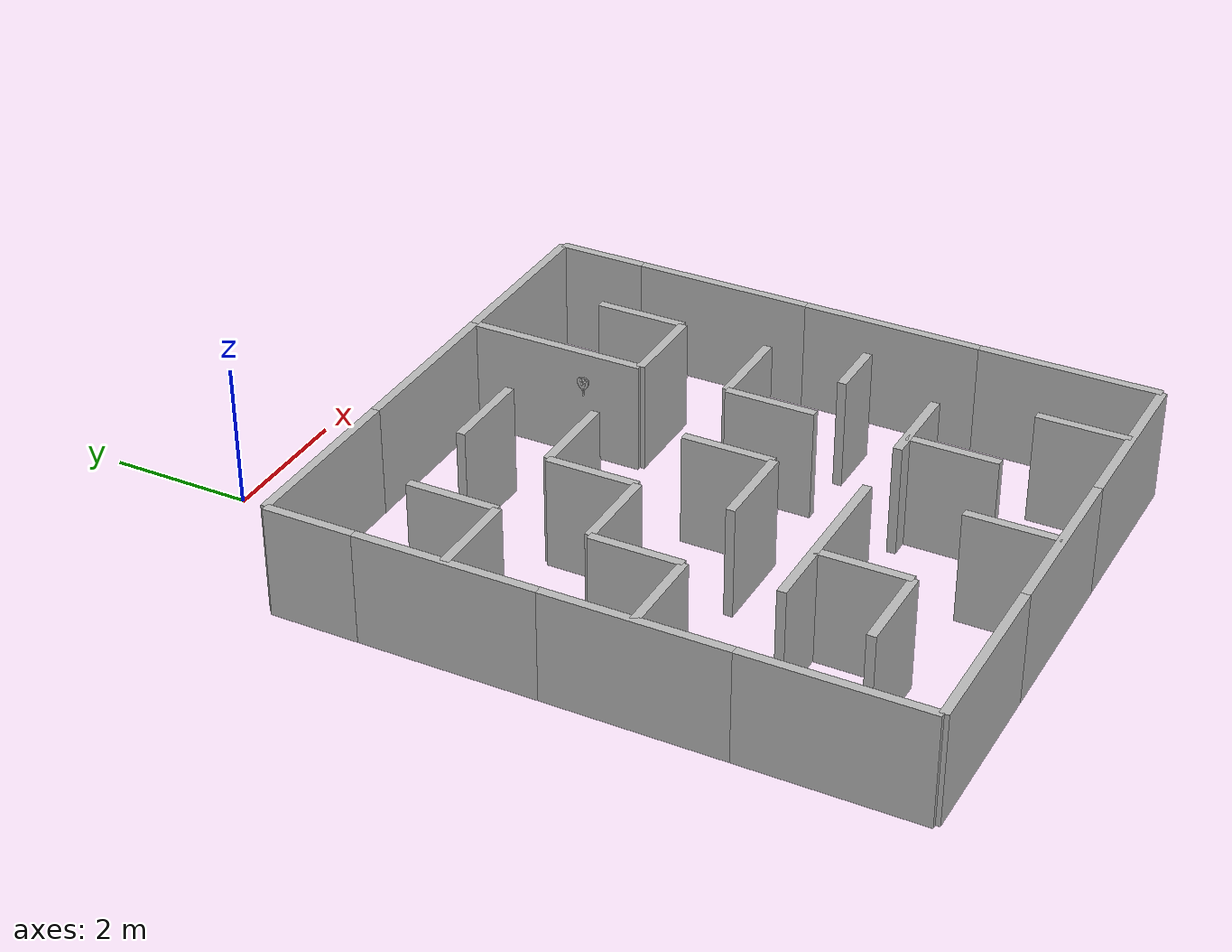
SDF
<sdf version="1.5">
 <world name="default">
  <scene><sky><clouds><speed>3</speed></clouds></sky></scene>
  <include><uri>model://sun_2</uri></include>
  <include><static>true</static><pose>-0.9 -10.25 -0.891 0 0 0</pose><uri>model://smaze2d</uri></include>
  <include><pose>4.17 -2.9 0.4 0 0 0</pose><uri>model://padel_racket</uri></include>
 </world>
</sdf>

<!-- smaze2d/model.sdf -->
<sdf version="1.5">
  <model name="smaze2d">

    <include>
      <name>w1</name>
				<pose>0.0 1.32 0.0 0.0 0.0 1.5708</pose>
      <uri>model://smaze_wall</uri>
    </include>
    <include>
      <name>w2</name>
				<pose>0.0 3.96 0.0 0.0 0.0 1.5708</pose>
      <uri>model://smaze_wall</uri>
    </include>
    <include>
      <name>w3</name>
				<pose>0.0 6.6000000000000005 0.0 0.0 0.0 1.5708</pose>
      <uri>model://smaze_wall</uri>
    </include>
    <include>
      <name>w4</name>
				<pose>0.0 8.58 0.0 0.0 0.0 1.5708</pose>
      <uri>model://smaze_wall_short</uri>
    </include>

    <include>
      <name>w5</name>
				<pose>7.92 1.32 0.0 0.0 0.0 1.5708</pose>
      <uri>model://smaze_wall</uri>
    </include>
    <include>
      <name>w6</name>
				<pose>7.92 3.96 0.0 0.0 0.0 1.5708</pose>
      <uri>model://smaze_wall</uri>
    </include>
    <include>
      <name>w7</name>
				<pose>7.92 6.6000000000000005 0.0 0.0 0.0 1.5708</pose>
      <uri>model://smaze_wall</uri>
    </include>
    <include>
      <name>w8</name>
				<pose>7.92 8.58 0.0 0.0 0.0 1.5708</pose>
      <uri>model://smaze_wall_short</uri>
    </include>

    <include>
      <name>w11</name>
				<pose>1.32 0.0 0.0 0.0 0.0 0.0</pose>
      <uri>model://smaze_wall</uri>
    </include>
    <include>
      <name>w12</name>
				<pose>3.96 0.0 0.0 0.0 0.0 0.0</pose>
      <uri>model://smaze_wall</uri>
    </include>
    <include>
      <name>w13</name>
				<pose>6.6000000000000005 0.0 0.0 0.0 0.0 0.0</pose>
      <uri>model://smaze_wall</uri>
    </include>

    <include>
      <name>w14</name>
				<pose>1.32 9.24 0.0 0.0 0.0 0.0</pose>
      <uri>model://smaze_wall</uri>
    </include>
    <include>
      <name>w15</name>
				<pose>3.96 9.24 0.0 0.0 0.0 0.0</pose>
      <uri>model://smaze_wall</uri>
    </include>
    <include>
      <name>w16</name>
				<pose>6.6000000000000005 9.24 0.0 0.0 0.0 0.0</pose>
      <uri>model://smaze_wall</uri>
    </include>

    <include>
      <name>w17</name>
				<pose>3.3000000000000003 7.92 0.0 0.0 0.0 0.0</pose>
      <uri>model://smaze_wall_short</uri>
    </include>
    <include>
      <name>w18</name>
				<pose>3.3000000000000003 3.96 0.0 0.0 0.0 0.0</pose>
      <uri>model://smaze_wall_short</uri>
    </include>
    <include>
      <name>w19</name>
				<pose>2.64 2.64 0.0 0.0 0.0 0.0</pose>
      <uri>model://smaze_wall</uri>
    </include>
    <include>
      <name>w20</name>
				<pose>1.6500000000000001 1.32 0.0 0.0 0.0 0.0</pose>
      <uri>model://smaze_wall_short</uri>
    </include>
    <include>
      <name>w21</name>
				<pose>5.61 2.64 0.0 0.0 0.0 0.0</pose>
      <uri>model://smaze_wall_short</uri>
    </include>
    <include>
      <name>w22</name>
				<pose>6.6000000000000005 3.96 0.0 0.0 0.0 0.0</pose>
      <uri>model://smaze_wall_short_short</uri>
    </include>
    <include>
      <name>w23</name>
				<pose>5.28 7.92 0.0 0.0 0.0 1.5708</pose>
      <uri>model://smaze_wall</uri>
    </include>

    <include>
      <name>s1</name>
				<pose>6.6000000000000005 7.260000000000001 0.0 0.0 0.0 1.5708</pose>
      <uri>model://smaze_wall_short</uri>
    </include>
    <include>
      <name>s2</name>
				<pose>5.28 4.62 0.0 0.0 0.0 1.5708</pose>
      <uri>model://smaze_wall_short</uri>
    </include>
    <include>
      <name>s3</name>
				<pose>5.28 1.98 0.0 0.0 0.0 1.5708</pose>
      <uri>model://smaze_wall_short</uri>
    </include>
    <include>
      <name>s4</name>
				<pose>6.6000000000000005 0.66 0.0 0.0 0.0 1.5708</pose>
      <uri>model://smaze_wall_short</uri>
    </include>
    <include>
      <name>s5</name>
				<pose>3.96 0.66 0.0 0.0 0.0 1.5708</pose>
      <uri>model://smaze_wall_short</uri>
    </include>
    <include>
      <name>s6</name>
				<pose>2.31 1.98 0.0 0.0 0.0 1.5708</pose>
      <uri>model://smaze_wall_short</uri>
    </include>
    <include>
      <name>s7</name>
				<pose>1.32 4.62 0.0 0.0 0.0 1.5708</pose>
      <uri>model://smaze_wall_short</uri>
    </include>
    <include>
      <name>s8</name>
				<pose>2.64 5.94 0.0 0.0 0.0 1.5708</pose>
      <uri>model://smaze_wall_short</uri>
    </include>
    <include>
      <name>s9</name>
				<pose>1.32 7.260000000000001 0.0 0.0 0.0 1.5708</pose>
      <uri>model://smaze_wall_short</uri>
    </include>
    <include>
      <name>s10</name>
				<pose>3.96 4.62 0.0 0.0 0.0 1.5708</pose>
      <uri>model://smaze_wall_short</uri>
    </include>

    <include>
      <name>v1</name>
				<pose>0.66 3.96 0.0 0.0 0.0 0.0</pose>
      <uri>model://smaze_wall_short</uri>
    </include>
    <include>
      <name>v2</name>
				<pose>0.66 6.6000000000000005 0.0 0.0 0.0 0.0</pose>
      <uri>model://smaze_wall_short</uri>
    </include>
    <include>
      <name>v3</name>
				<pose>1.98 5.28 0.0 0.0 0.0 0.0</pose>
      <uri>model://smaze_wall_short</uri>
    </include>
    <include>
      <name>v4</name>
				<pose>3.3000000000000003 6.6000000000000005 0.0 0.0 0.0 0.0</pose>
      <uri>model://smaze_wall_short</uri>
    </include>
    <include>
      <name>v5</name>
				<pose>5.94 5.28 0.0 0.0 0.0 0.0</pose>
      <uri>model://smaze_wall_short</uri>
    </include>
    <include>
      <name>v6</name>
				<pose>5.94 6.6000000000000005 0.0 0.0 0.0 0.0</pose>
      <uri>model://smaze_wall_short</uri>
    </include>

  </model>
</sdf>

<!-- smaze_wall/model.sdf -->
<sdf version="1.5">
  <model name="smaze_wall">
    <static>true</static>
    <link name="link">
				<pose>0.0 0.0 0.8250000000000001 0.0 0.0 0.0</pose>
      <collision name="collision">
        <geometry>
          <box>
				<size>2.64 0.132 1.6500000000000001</size>
          </box>
        </geometry>
      </collision>
      <visual name="visual">
        <geometry>
          <box>
				<size>2.64 0.132 1.6500000000000001</size>
          </box>
        </geometry>
        <material>
          <script>
            <uri>model://smaze_wall/materials/scripts</uri>
            <uri>model://smaze_wall/materials/textures</uri>
            <name>vrc/smaze_wall</name>
          </script>
        </material>
      </visual>
    </link>
  </model>
</sdf>

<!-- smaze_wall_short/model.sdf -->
<sdf version="1.5">
  <model name="smaze_wall_short">
    <static>true</static>
    <link name="link">
				<pose>0.0 0.0 0.8250000000000001 0.0 0.0 0.0</pose>
      <collision name="collision">
        <geometry>
          <box>
				<size>1.32 0.132 1.6500000000000001</size>
          </box>
        </geometry>
      </collision>
      <visual name="visual">
        <geometry>
          <box>
				<size>1.32 0.132 1.6500000000000001</size>
          </box>
        </geometry>
        <material>
          <script>
            <uri>model://smaze_wall_short/materials/scripts</uri>
            <uri>model://smaze_wall_short/materials/textures</uri>
            <name>vrc/smaze_wall_short</name>
          </script>
        </material>
      </visual>
    </link>
  </model>
</sdf>

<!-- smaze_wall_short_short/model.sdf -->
<sdf version="1.5">
  <model name="smaze_wall_short">
    <static>true</static>
    <link name="link">
				<pose>0.0 0.0 0.8250000000000001 0.0 0.0 0.0</pose>
      <collision name="collision">
        <geometry>
          <box>
				<size>0.9 0.132 1.6500000000000001</size>
          </box>
        </geometry>
      </collision>
      <visual name="visual">
        <geometry>
          <box>
				<size>0.9 0.132 1.6500000000000001</size>
          </box>
        </geometry>
        <material>
          <script>
            <uri>model://smaze_wall_short/materials/scripts</uri>
            <uri>model://smaze_wall_short/materials/textures</uri>
            <name>vrc/smaze_wall_short</name>
          </script>
        </material>
      </visual>
    </link>
  </model>
</sdf>

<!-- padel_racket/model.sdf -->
<sdf version='1.6'>
  <model name='Padel racket'>
    <static>true</static>
    <link name='link'>
      <collision name='collision'>
        <geometry>
          <mesh>
             <scale>0.004 0.004 0.004</scale>
            <uri>meshes/racket.stl</uri>
          </mesh>
        </geometry>
      </collision>
      <visual name='visual'>
        <geometry>
          <mesh>
            <scale>0.004 0.004 0.004</scale>
            <uri>meshes/racket.stl</uri>
          </mesh>
        </geometry>
      </visual>
    </link>
  </model>
</sdf>
